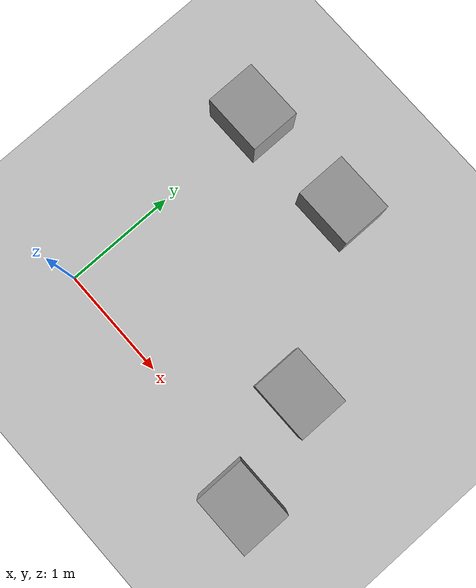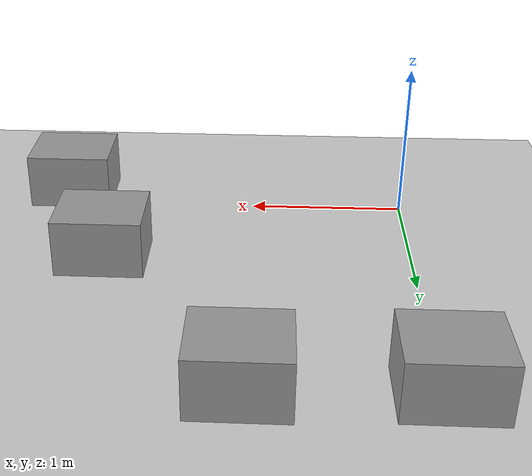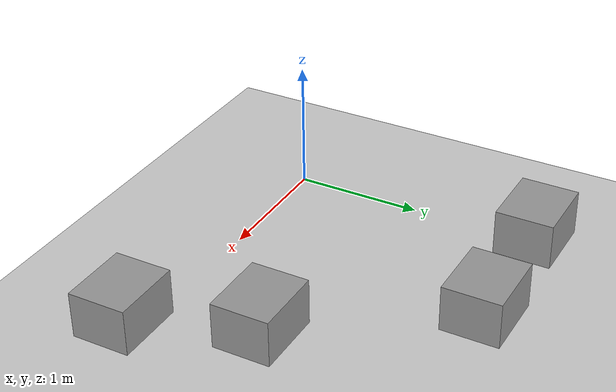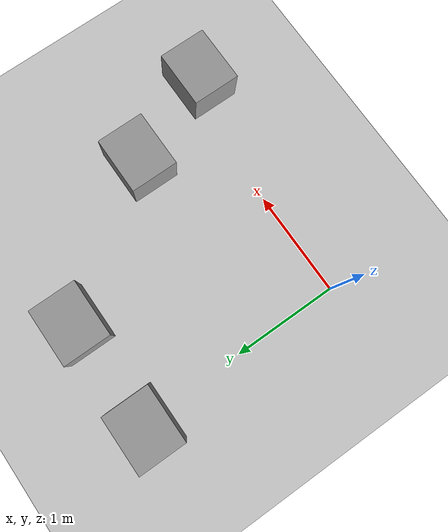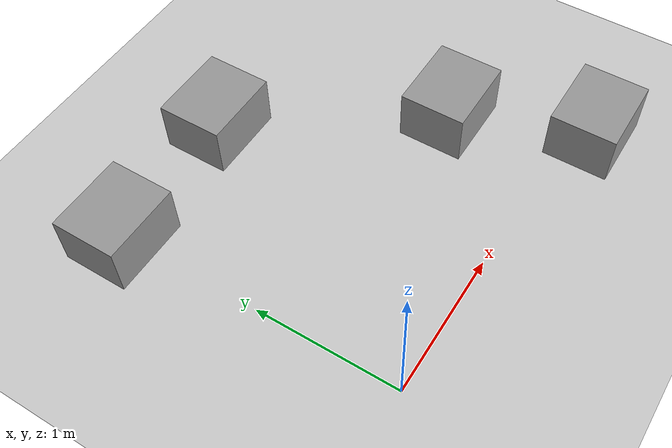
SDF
<sdf version="1.7">
 <world name="default">
  <light name="sun" type="directional">
   <pose>0 0 10 0 -0 0</pose>
   <diffuse>0.8 0.8 0.8 1</diffuse>
   <specular>0.2 0.2 0.2 1</specular>
   <attenuation>
    <range>1000</range>
    <constant>0.9</constant>
    <linear>0.01</linear>
    <quadratic>0.001</quadratic>
   </attenuation>
   <direction>-0.5 0.1 -0.9</direction>
   <spot><inner_angle>0</inner_angle><outer_angle>0</outer_angle><falloff>0</falloff></spot>
  </light>
  <model name="ground_plane">
   <static>1</static>
   <link name="link">
    <collision name="collision">
     <geometry><plane><normal>0 0 1</normal><size>100 100</size></plane></geometry>
     <surface>
      <contact><collide_bitmask>65535</collide_bitmask></contact>
      <friction><ode><mu>100</mu><mu2>50</mu2></ode></friction>
     </surface>
    </collision>
    <visual name="visual">
     <cast_shadows>0</cast_shadows>
     <geometry><plane><normal>0 0 1</normal><size>100 100</size></plane></geometry>
     <material>
      <script><uri>file://media/materials/scripts/gazebo.material</uri><name>Gazebo/Grey</name></script>
     </material>
    </visual>
   </link>
  </model>
  <gravity>0 0 -9.8</gravity>
  <magnetic_field>6e-06 2.3e-05 -4.2e-05</magnetic_field>
  <atmosphere type="adiabatic"/>
  <physics type="ode">
   <max_step_size>0.001</max_step_size>
   <real_time_factor>1</real_time_factor>
   <real_time_update_rate>1000</real_time_update_rate>
  </physics>
  <scene><ambient>0.4 0.4 0.4 1</ambient><background>0.7 0.7 0.7 1</background><shadows>1</shadows></scene>
  <audio><device>default</device></audio>
  <spherical_coordinates>
   <surface_model>EARTH_WGS84</surface_model>
   <latitude_deg>0</latitude_deg>
   <longitude_deg>0</longitude_deg>
   <elevation>0</elevation>
   <heading_deg>0</heading_deg>
  </spherical_coordinates>
  <model name="unit_box">
   <pose>2.26658 -0.159838 0.180475 0 -0 0</pose>
   <link name="link">
    <inertial>
     <mass>1</mass>
     <inertia>
      <ixx>0.166667</ixx>
      <ixy>0</ixy>
      <ixz>0</ixz>
      <iyy>0.166667</iyy>
      <iyz>0</iyz>
      <izz>0.166667</izz>
     </inertia>
    </inertial>
    <collision name="collision">
     <geometry><box><size>0.547003 0.450195 0.360951</size></box></geometry>
    </collision>
    <visual name="visual">
     <geometry><box><size>0.547003 0.450195 0.360951</size></box></geometry>
     <material>
      <script><name>Gazebo/Grey</name><uri>file://media/materials/scripts/gazebo.material</uri></script>
     </material>
    </visual>
   </link>
  </model>
  <model name="unit_box_clone">
   <pose>1.91769 0.742066 0.180476 0 -0 0</pose>
   <link name="link">
    <inertial>
     <mass>1</mass>
     <inertia>
      <ixx>0.166667</ixx>
      <ixy>0</ixy>
      <ixz>0</ixz>
      <iyy>0.166667</iyy>
      <iyz>0</iyz>
      <izz>0.166667</izz>
     </inertia>
    </inertial>
    <collision name="collision">
     <geometry><box><size>0.547004 0.450195 0.360952</size></box></geometry>
    </collision>
    <visual name="visual">
     <geometry><box><size>0.547004 0.450195 0.360952</size></box></geometry>
     <material>
      <script><name>Gazebo/Grey</name><uri>file://media/materials/scripts/gazebo.material</uri></script>
     </material>
    </visual>
   </link>
  </model>
  <model name="unit_box_clone_clone">
   <pose>-0.026067 1.98745 0.180476 0 -0 0</pose>
   <link name="link">
    <inertial>
     <mass>1</mass>
     <inertia>
      <ixx>0.166667</ixx>
      <ixy>0</ixy>
      <ixz>0</ixz>
      <iyy>0.166667</iyy>
      <iyz>0</iyz>
      <izz>0.166667</izz>
     </inertia>
    </inertial>
    <collision name="collision">
     <geometry><box><size>0.547004 0.450195 0.360952</size></box></geometry>
    </collision>
    <visual name="visual">
     <geometry><box><size>0.547004 0.450195 0.360952</size></box></geometry>
     <material>
      <script><name>Gazebo/Grey</name><uri>file://media/materials/scripts/gazebo.material</uri></script>
     </material>
    </visual>
   </link>
  </model>
  <model name="unit_box_clone_clone_0">
   <pose>1.01813 2.01768 0.180476 0 -0 0</pose>
   <link name="link">
    <inertial>
     <mass>1</mass>
     <inertia>
      <ixx>0.166667</ixx>
      <ixy>0</ixy>
      <ixz>0</ixz>
      <iyy>0.166667</iyy>
      <iyz>0</iyz>
      <izz>0.166667</izz>
     </inertia>
    </inertial>
    <collision name="collision">
     <geometry><box><size>0.547004 0.450195 0.360952</size></box></geometry>
    </collision>
    <visual name="visual">
     <geometry><box><size>0.547004 0.450195 0.360952</size></box></geometry>
     <material>
      <script><name>Gazebo/Grey</name><uri>file://media/materials/scripts/gazebo.material</uri></script>
     </material>
    </visual>
   </link>
  </model>
 </world>
</sdf>
